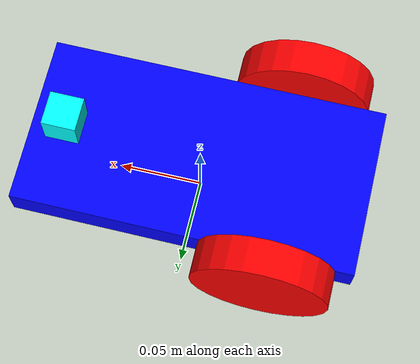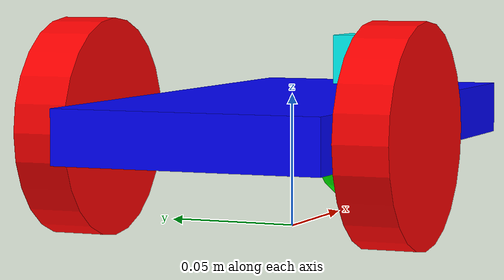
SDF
<?xml version="1.0" ?>
<sdf version="1.11">
    <model name='car' canonical_link='chassis'>
        <!--chassis-->
        <link name='chassis'>
            <pose relative_to='__model__'>0 0 0.04 0 0 0</pose>
            <inertial>
                <mass>0.2</mass>
                <inertia>
                    <ixx>0.000168</ixx>
                    <ixy>0</ixy>
                    <ixz>0</ixz>
                    <iyy>0.000208</iyy>
                    <iyz>0</iyz>
                    <izz>0.0000433</izz>
                </inertia>
            </inertial>
            <visual name='visual'>
                <geometry>
                    <box>
                        <size>0.2 0.1 0.02</size>
                    </box>
                </geometry>
                <!--Color of the link-->
                <material>
                    <ambient>0.0 0.0 1 1</ambient>
                    <diffuse>0.0 0.0 1 1</diffuse>
                    <specular>0.0 0.0 1 1</specular>
                </material>
            </visual>
            <collision name='collision'>
                <geometry>
                    <box>
                        <size>0.2 0.1 0.02</size>
                    </box>
                </geometry>
            </collision>
        </link>

        <!--Left wheel-->
        <link name='left_wheel'>
            <pose relative_to="chassis">-0.05 0.06 0 -1.5707 0 0</pose> <!--angles are in radian-->
            <inertial>
                <mass>0.1</mass>
                <inertia>
                    <ixx>0.0000516</ixx>
                    <ixy>0</ixy>
                    <ixz>0</ixz>
                    <iyy>0.0000516</iyy>
                    <iyz>0</iyz>
                    <izz>0.00005</izz>
                </inertia>
            </inertial>
            <visual name='visual'>
                <geometry>
                    <cylinder>
                        <radius>0.04</radius>
                        <length>0.02</length>
                    </cylinder>
                </geometry>
                <material>
                    <ambient>1.0 0.0 0.0 1</ambient>
                    <diffuse>1.0 0.0 0.0 1</diffuse>
                    <specular>1.0 0.0 0.0 1</specular>
                </material>
            </visual>
            <collision name='collision'>
                <geometry>
                    <cylinder>
                        <radius>0.04</radius>
                        <length>0.02</length>
                    </cylinder>
                </geometry>
            </collision>
        </link>

        <!--The same as left wheel but with different position-->
        <link name='right_wheel'>
            <pose relative_to="chassis">-0.05 -0.06 0 -1.5707 0 0</pose> <!--angles are in radian-->
            <inertial>
                <mass>0.1</mass>
                <inertia>
                    <ixx>0.0000516</ixx>
                    <ixy>0</ixy>
                    <ixz>0</ixz>
                    <iyy>0.0000516</iyy>
                    <iyz>0</iyz>
                    <izz>0.00005</izz>
                </inertia>
            </inertial>
            <visual name='visual'>
                <geometry>
                    <cylinder>
                        <radius>0.04</radius>
                        <length>0.02</length>
                    </cylinder>
                </geometry>
                <material>
                    <ambient>1.0 0.0 0.0 1</ambient>
                    <diffuse>1.0 0.0 0.0 1</diffuse>
                    <specular>1.0 0.0 0.0 1</specular>
                </material>
            </visual>
            <collision name='collision'>
                <geometry>
                    <cylinder>
                        <radius>0.04</radius>
                        <length>0.02</length>
                    </cylinder>
                </geometry>
            </collision>
        </link>

        <!--arbitrary frame-->
        <frame name="caster_frame" attached_to='chassis'>
            <pose relative_to='chassis'>0.08 0 -0.02 0 0 0</pose>
        </frame>

        <!--caster wheel-->
        <link name='caster'>
            <pose relative_to='caster_frame'/>
            <inertial>
                <mass>0.05</mass>
                <inertia>
                    <ixx>0.0000008</ixx>
                    <ixy>0</ixy>
                    <ixz>0</ixz>
                    <iyy>0.0000008</iyy>
                    <iyz>0</iyz>
                    <izz>0.0000008</izz>
                </inertia>
            </inertial>
            <visual name='visual'>
                <geometry>
                    <sphere>
                        <radius>0.02</radius>
                    </sphere>
                </geometry>
                <material>
                    <ambient>0.0 1 0.0 1</ambient>
                    <diffuse>0.0 1 0.0 1</diffuse>
                    <specular>0.0 1 0.0 1</specular>
                </material>
            </visual>
            <collision name='collision'>
                <geometry>
                    <sphere>
                        <radius>0.02</radius>
                    </sphere>
                </geometry>
            </collision>
        </link>

        <!--left wheel joint-->
        <joint name='left_wheel_joint' type='revolute'>
            <pose relative_to='left_wheel'/>
            <parent>chassis</parent>
            <child>left_wheel</child>
            <axis>
                <xyz expressed_in='__model__'>0 1 0</xyz> <!--can be descired to any frame or even arbitrary frames-->
                <limit>
                    <lower>-1.79769e+308</lower>    <!--negative infinity-->
                    <upper>1.79769e+308</upper>     <!--positive infinity-->
                </limit>
            </axis>
        </joint>

        <!--right wheel joint-->
        <joint name='right_wheel_joint' type='revolute'>
            <pose relative_to='right_wheel'/>
            <parent>chassis</parent>
            <child>right_wheel</child>
            <axis>
                <xyz expressed_in='__model__'>0 1 0</xyz>
                <limit>
                    <lower>-1.79769e+308</lower>    <!--negative infinity-->
                    <upper>1.79769e+308</upper>     <!--positive infinity-->
                </limit>
            </axis>
        </joint>

        <!--caster wheel joint--> <!--pose defult value is the child-->
        <joint name='caster_joint' type='ball'>
            <parent>chassis</parent>
            <child>caster</child>
        </joint>

        <plugin filename="gz-sim-diff-drive-system" name="gz::sim::systems::DiffDrive">
            <left_joint>left_wheel_joint</left_joint>
            <right_joint>right_wheel_joint</right_joint>
            <wheel_separation>0.12</wheel_separation>
            <wheel_radius>0.04</wheel_radius>
            <odom_publish_frequency>50</odom_publish_frequency>
            <topic>cmd_vel</topic>
            <odom_topic>odom</odom_topic>
            <frame_id>odom</frame_id>
        </plugin>

        <plugin filename="gz-sim-sensors-system" name="gz::sim::systems::Sensors">
            <render_engine>ogre2</render_engine>
        </plugin>

        <link name="sensor">
            <pose relative_to='chassis'>0.08 0 0.02 0 0 0</pose>
            <inertial auto="true">
                <density>1</density>
            </inertial>
            <collision name="collisional">
                <geometry>
                    <box>
                        <size>0.02 0.02 0.02</size>
                    </box>
                </geometry>
            </collision>
            <visual name="visual1">
                <geometry>
                    <box>
                        <size>0.02 0.02 0.02</size>
                    </box>
                </geometry>
                <material>
                    <ambient>0.0 1.0 1.0 1</ambient>
                    <diffuse>0.0 1.0 1.0 1</diffuse>
                    <specular>0.0 1.0 1.0 1</specular>
                </material>
            </visual>

            <sensor name="rgbd" type="rgbd_camera">
                <camera>
                    <horizontal_fov>1.047</horizontal_fov>
                    <image>
                    <width>320</width>
                    <height>240</height>
                    </image>
                    <clip>
                    <near>0.1</near>
                    <far>100</far>
                    </clip>
                </camera>
                <always_on>1</always_on>
                <update_rate>30</update_rate>
                <visualize>true</visualize>
                <topic>rgbd</topic>
                <enable_metrics>true</enable_metrics>
            </sensor>

            <sensor name='scan' type='gpu_lidar'>"
                <!-- 这条位姿为实际雷达位置 -->
                <pose relative_to="sensor">0 0 0.05 0 0 0</pose>
                <topic>scan</topic>
                <update_rate>5</update_rate>
                <ray>
                    <scan>
                        <horizontal>
                            <samples>360</samples>
                            <resolution>1</resolution>
                            <min_angle>0.0</min_angle>
                            <max_angle>6.28</max_angle>
                        </horizontal>
                    </scan>
                    <range>
                        <min>0.12</min>
                        <max>3.5</max>
                        <resolution>0.015</resolution>
                    </range>
                </ray>
                <always_on>1</always_on>
                <visualize>true</visualize>
            </sensor>
        </link>

        <joint name="sensor_joint" type="fixed">
            <parent>chassis</parent>
            <child>sensor</child>
        </joint>
    </model>
</sdf>
